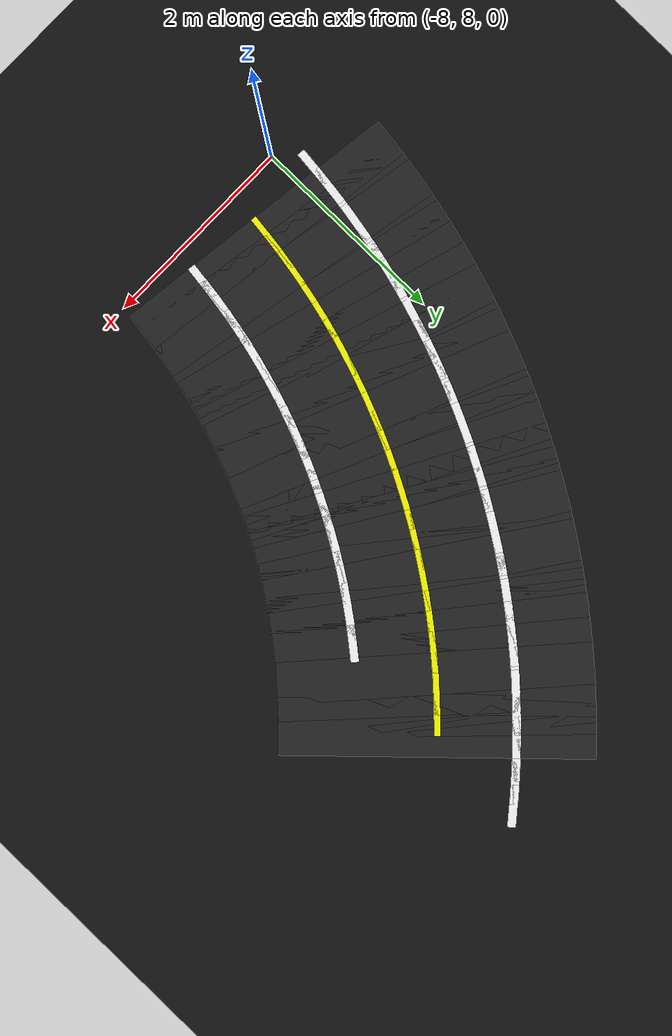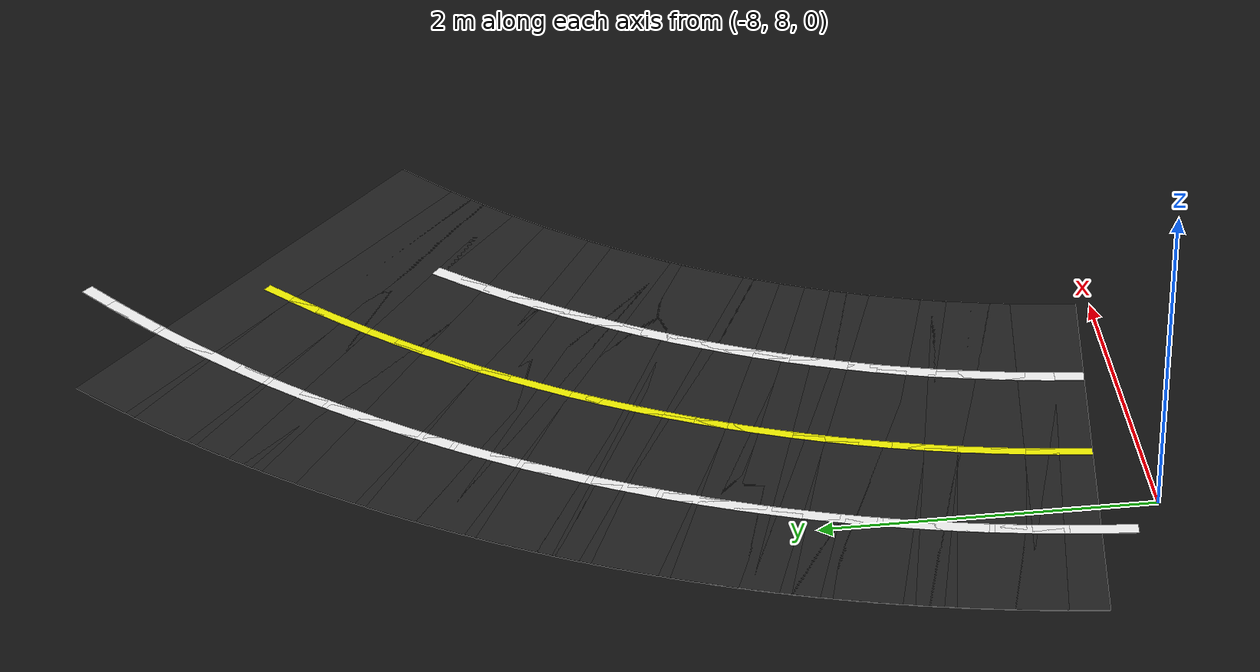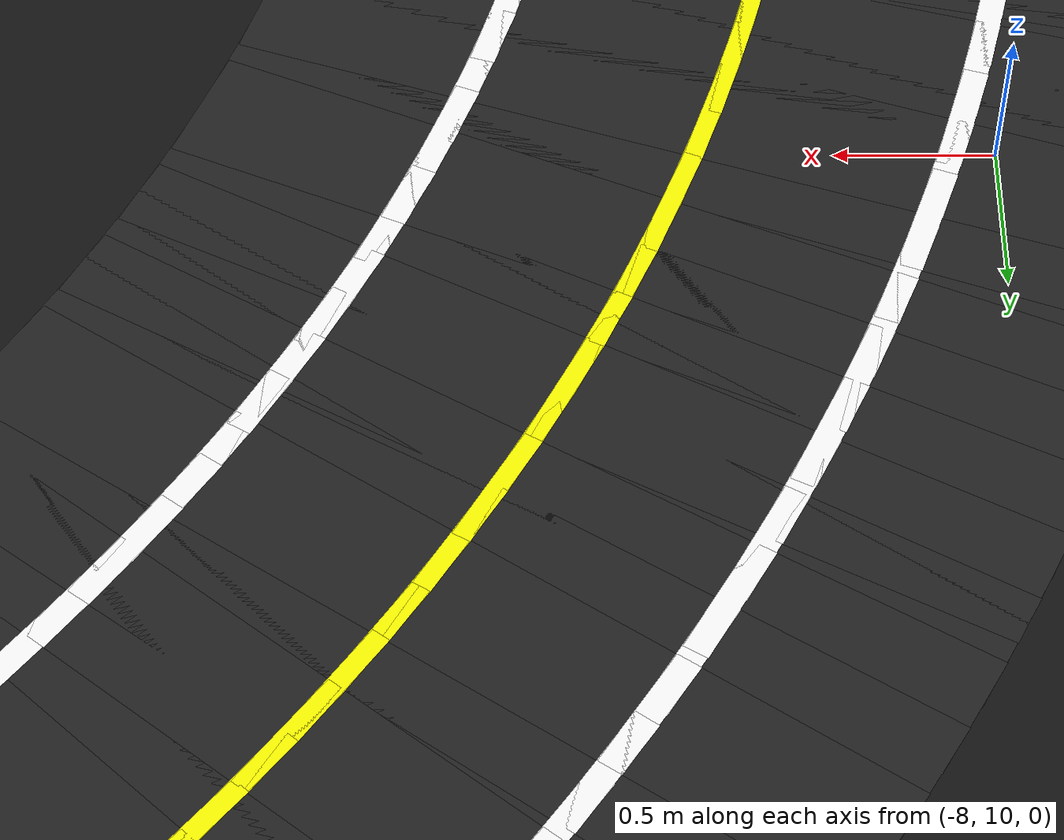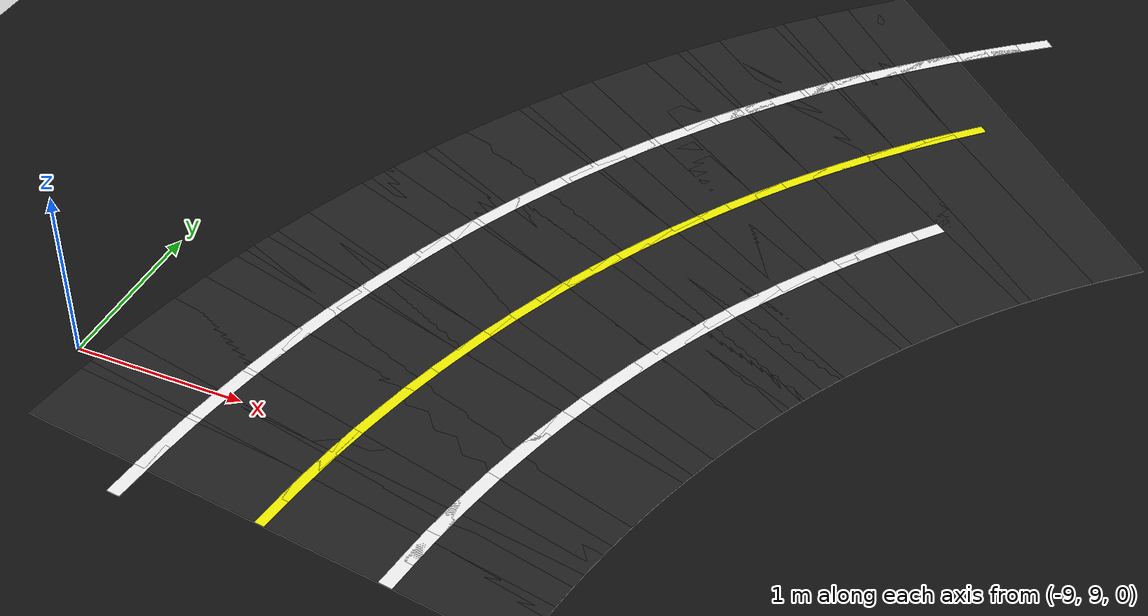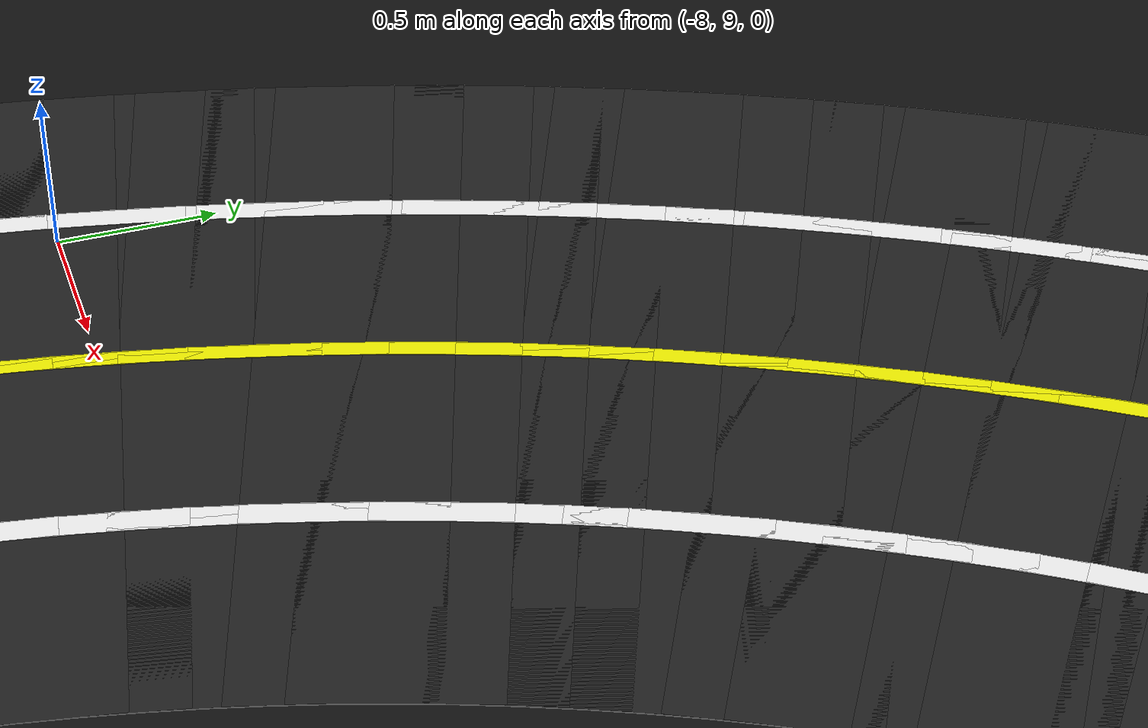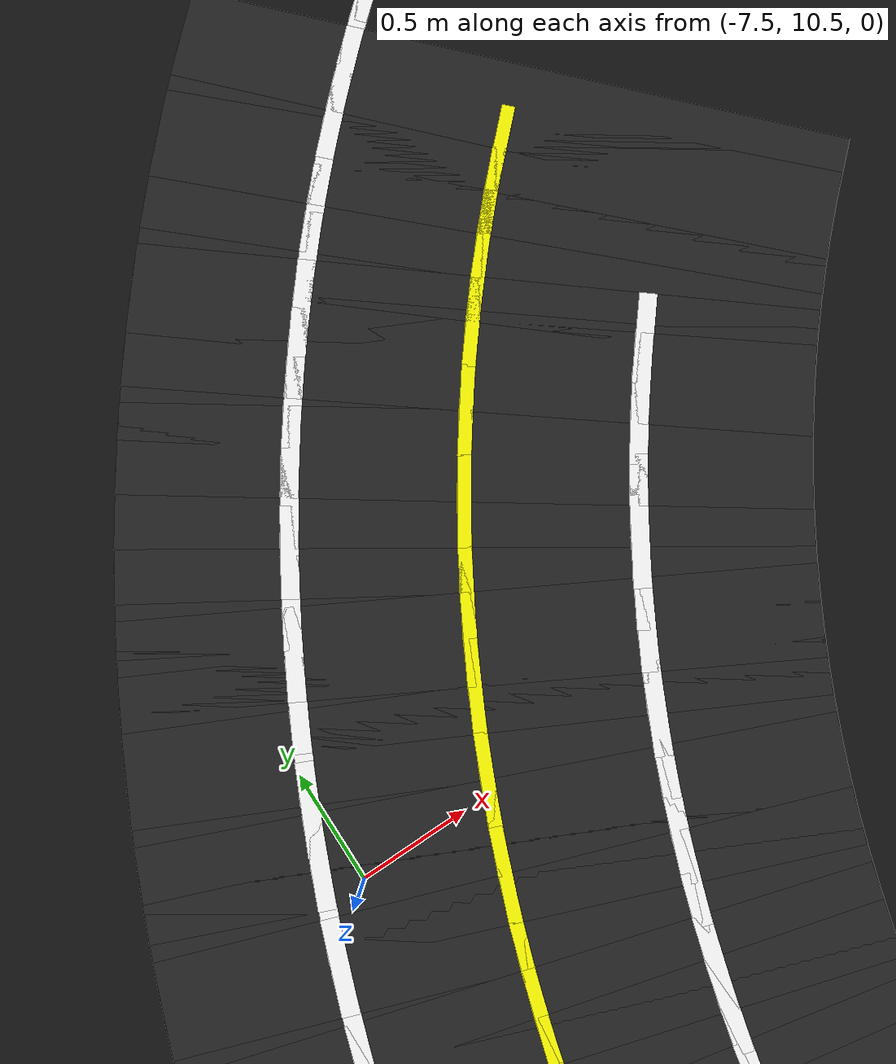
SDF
<sdf version="1.6">
 <world name="figure8_world">
  <model name="ground_plane">
   <static>true</static>
   <link name="link">
    <collision name="collision">
     <geometry><plane><normal>0 0 1</normal><size>120 120</size></plane></geometry>
    </collision>
    <visual name="visual">
     <geometry><plane><normal>0 0 1</normal><size>120 120</size></plane></geometry>
     <material><ambient>0.08 0.08 0.08 1</ambient><diffuse>0.08 0.08 0.08 1</diffuse></material>
    </visual>
   </link>
  </model>
  <model name="seg_00345">
   <static>true</static>
   <pose>-5.1919 13.9115 0.0030 0 0 3.8223</pose>
   <link name="link">
    <collision name="collision"><geometry><box><size>0.4000 0.0800 0.002</size></box></geometry></collision>
    <visual name="visual">
     <geometry><box><size>0.4000 0.0800 0.002</size></box></geometry>
     <material><ambient>1 1 1 1</ambient><diffuse>1 1 1 1</diffuse></material>
    </visual>
   </link>
  </model>
  <model name="seg_00349">
   <static>true</static>
   <pose>-5.3579 13.7733 0.0030 0 0 3.8485</pose>
   <link name="link">
    <collision name="collision"><geometry><box><size>0.4000 0.0800 0.002</size></box></geometry></collision>
    <visual name="visual">
     <geometry><box><size>0.4000 0.0800 0.002</size></box></geometry>
     <material><ambient>1 1 1 1</ambient><diffuse>1 1 1 1</diffuse></material>
    </visual>
   </link>
  </model>
  <model name="seg_00353">
   <static>true</static>
   <pose>-5.5203 13.6309 0.0030 0 0 3.8746</pose>
   <link name="link">
    <collision name="collision"><geometry><box><size>0.4000 0.0800 0.002</size></box></geometry></collision>
    <visual name="visual">
     <geometry><box><size>0.4000 0.0800 0.002</size></box></geometry>
     <material><ambient>1 1 1 1</ambient><diffuse>1 1 1 1</diffuse></material>
    </visual>
   </link>
  </model>
  <model name="seg_00356">
   <static>true</static>
   <pose>-5.1627 12.9403 0.0010 0 0 3.9008</pose>
   <link name="link">
    <collision name="collision"><geometry><box><size>0.4000 3.0000 0.002</size></box></geometry></collision>
    <visual name="visual">
     <geometry><box><size>0.4000 3.0000 0.002</size></box></geometry>
     <material><ambient>0.14 0.14 0.14 1</ambient><diffuse>0.14 0.14 0.14 1</diffuse></material>
    </visual>
   </link>
  </model>
  <model name="seg_00357">
   <static>true</static>
   <pose>-5.6789 13.4843 0.0030 0 0 3.9008</pose>
   <link name="link">
    <collision name="collision"><geometry><box><size>0.4000 0.0800 0.002</size></box></geometry></collision>
    <visual name="visual">
     <geometry><box><size>0.4000 0.0800 0.002</size></box></geometry>
     <material><ambient>1 1 1 1</ambient><diffuse>1 1 1 1</diffuse></material>
    </visual>
   </link>
  </model>
  <model name="seg_00360">
   <static>true</static>
   <pose>-5.3033 12.8033 0.0010 0 0 3.9270</pose>
   <link name="link">
    <collision name="collision"><geometry><box><size>0.4000 3.0000 0.002</size></box></geometry></collision>
    <visual name="visual">
     <geometry><box><size>0.4000 3.0000 0.002</size></box></geometry>
     <material><ambient>0.14 0.14 0.14 1</ambient><diffuse>0.14 0.14 0.14 1</diffuse></material>
    </visual>
   </link>
  </model>
  <model name="seg_00361">
   <static>true</static>
   <pose>-5.8336 13.3336 0.0030 0 0 3.9270</pose>
   <link name="link">
    <collision name="collision"><geometry><box><size>0.4000 0.0800 0.002</size></box></geometry></collision>
    <visual name="visual">
     <geometry><box><size>0.4000 0.0800 0.002</size></box></geometry>
     <material><ambient>1 1 1 1</ambient><diffuse>1 1 1 1</diffuse></material>
    </visual>
   </link>
  </model>
  <model name="seg_00363">
   <static>true</static>
   <pose>-5.3033 12.8033 0.0030 0 0 3.9270</pose>
   <link name="link">
    <collision name="collision"><geometry><box><size>0.4000 0.0600 0.002</size></box></geometry></collision>
    <visual name="visual">
     <geometry><box><size>0.4000 0.0600 0.002</size></box></geometry>
     <material><ambient>1 1 0 1</ambient><diffuse>1 1 0 1</diffuse></material>
    </visual>
   </link>
  </model>
  <model name="seg_00364">
   <static>true</static>
   <pose>-5.4403 12.6627 0.0010 0 0 3.9532</pose>
   <link name="link">
    <collision name="collision"><geometry><box><size>0.4000 3.0000 0.002</size></box></geometry></collision>
    <visual name="visual">
     <geometry><box><size>0.4000 3.0000 0.002</size></box></geometry>
     <material><ambient>0.14 0.14 0.14 1</ambient><diffuse>0.14 0.14 0.14 1</diffuse></material>
    </visual>
   </link>
  </model>
  <model name="seg_00365">
   <static>true</static>
   <pose>-5.9843 13.1789 0.0030 0 0 3.9532</pose>
   <link name="link">
    <collision name="collision"><geometry><box><size>0.4000 0.0800 0.002</size></box></geometry></collision>
    <visual name="visual">
     <geometry><box><size>0.4000 0.0800 0.002</size></box></geometry>
     <material><ambient>1 1 1 1</ambient><diffuse>1 1 1 1</diffuse></material>
    </visual>
   </link>
  </model>
  <model name="seg_00367">
   <static>true</static>
   <pose>-5.4403 12.6627 0.0030 0 0 3.9532</pose>
   <link name="link">
    <collision name="collision"><geometry><box><size>0.4000 0.0600 0.002</size></box></geometry></collision>
    <visual name="visual">
     <geometry><box><size>0.4000 0.0600 0.002</size></box></geometry>
     <material><ambient>1 1 0 1</ambient><diffuse>1 1 0 1</diffuse></material>
    </visual>
   </link>
  </model>
  <model name="seg_00368">
   <static>true</static>
   <pose>-5.5736 12.5185 0.0010 0 0 3.9794</pose>
   <link name="link">
    <collision name="collision"><geometry><box><size>0.4000 3.0000 0.002</size></box></geometry></collision>
    <visual name="visual">
     <geometry><box><size>0.4000 3.0000 0.002</size></box></geometry>
     <material><ambient>0.14 0.14 0.14 1</ambient><diffuse>0.14 0.14 0.14 1</diffuse></material>
    </visual>
   </link>
  </model>
  <model name="seg_00369">
   <static>true</static>
   <pose>-6.1309 13.0203 0.0030 0 0 3.9794</pose>
   <link name="link">
    <collision name="collision"><geometry><box><size>0.4000 0.0800 0.002</size></box></geometry></collision>
    <visual name="visual">
     <geometry><box><size>0.4000 0.0800 0.002</size></box></geometry>
     <material><ambient>1 1 1 1</ambient><diffuse>1 1 1 1</diffuse></material>
    </visual>
   </link>
  </model>
  <model name="seg_00371">
   <static>true</static>
   <pose>-5.5736 12.5185 0.0030 0 0 3.9794</pose>
   <link name="link">
    <collision name="collision"><geometry><box><size>0.4000 0.0600 0.002</size></box></geometry></collision>
    <visual name="visual">
     <geometry><box><size>0.4000 0.0600 0.002</size></box></geometry>
     <material><ambient>1 1 0 1</ambient><diffuse>1 1 0 1</diffuse></material>
    </visual>
   </link>
  </model>
  <model name="seg_00372">
   <static>true</static>
   <pose>-5.7030 12.3709 0.0010 0 0 4.0055</pose>
   <link name="link">
    <collision name="collision"><geometry><box><size>0.4000 3.0000 0.002</size></box></geometry></collision>
    <visual name="visual">
     <geometry><box><size>0.4000 3.0000 0.002</size></box></geometry>
     <material><ambient>0.14 0.14 0.14 1</ambient><diffuse>0.14 0.14 0.14 1</diffuse></material>
    </visual>
   </link>
  </model>
  <model name="seg_00373">
   <static>true</static>
   <pose>-6.2733 12.8579 0.0030 0 0 4.0055</pose>
   <link name="link">
    <collision name="collision"><geometry><box><size>0.4000 0.0800 0.002</size></box></geometry></collision>
    <visual name="visual">
     <geometry><box><size>0.4000 0.0800 0.002</size></box></geometry>
     <material><ambient>1 1 1 1</ambient><diffuse>1 1 1 1</diffuse></material>
    </visual>
   </link>
  </model>
  <model name="seg_00375">
   <static>true</static>
   <pose>-5.7030 12.3709 0.0030 0 0 4.0055</pose>
   <link name="link">
    <collision name="collision"><geometry><box><size>0.4000 0.0600 0.002</size></box></geometry></collision>
    <visual name="visual">
     <geometry><box><size>0.4000 0.0600 0.002</size></box></geometry>
     <material><ambient>1 1 0 1</ambient><diffuse>1 1 0 1</diffuse></material>
    </visual>
   </link>
  </model>
  <model name="seg_00376">
   <static>true</static>
   <pose>-5.8286 12.2199 0.0010 0 0 4.0317</pose>
   <link name="link">
    <collision name="collision"><geometry><box><size>0.4000 3.0000 0.002</size></box></geometry></collision>
    <visual name="visual">
     <geometry><box><size>0.4000 3.0000 0.002</size></box></geometry>
     <material><ambient>0.14 0.14 0.14 1</ambient><diffuse>0.14 0.14 0.14 1</diffuse></material>
    </visual>
   </link>
  </model>
  <model name="seg_00377">
   <static>true</static>
   <pose>-6.4115 12.6919 0.0030 0 0 4.0317</pose>
   <link name="link">
    <collision name="collision"><geometry><box><size>0.4000 0.0800 0.002</size></box></geometry></collision>
    <visual name="visual">
     <geometry><box><size>0.4000 0.0800 0.002</size></box></geometry>
     <material><ambient>1 1 1 1</ambient><diffuse>1 1 1 1</diffuse></material>
    </visual>
   </link>
  </model>
  <model name="seg_00378">
   <static>true</static>
   <pose>-5.2457 11.7479 0.0030 0 0 4.0317</pose>
   <link name="link">
    <collision name="collision"><geometry><box><size>0.4000 0.0800 0.002</size></box></geometry></collision>
    <visual name="visual">
     <geometry><box><size>0.4000 0.0800 0.002</size></box></geometry>
     <material><ambient>1 1 1 1</ambient><diffuse>1 1 1 1</diffuse></material>
    </visual>
   </link>
  </model>
  <model name="seg_00379">
   <static>true</static>
   <pose>-5.8286 12.2199 0.0030 0 0 4.0317</pose>
   <link name="link">
    <collision name="collision"><geometry><box><size>0.4000 0.0600 0.002</size></box></geometry></collision>
    <visual name="visual">
     <geometry><box><size>0.4000 0.0600 0.002</size></box></geometry>
     <material><ambient>1 1 0 1</ambient><diffuse>1 1 0 1</diffuse></material>
    </visual>
   </link>
  </model>
  <model name="seg_00380">
   <static>true</static>
   <pose>-5.9502 12.0657 0.0010 0 0 4.0579</pose>
   <link name="link">
    <collision name="collision"><geometry><box><size>0.4000 3.0000 0.002</size></box></geometry></collision>
    <visual name="visual">
     <geometry><box><size>0.4000 3.0000 0.002</size></box></geometry>
     <material><ambient>0.14 0.14 0.14 1</ambient><diffuse>0.14 0.14 0.14 1</diffuse></material>
    </visual>
   </link>
  </model>
  <model name="seg_00381">
   <static>true</static>
   <pose>-6.5452 12.5223 0.0030 0 0 4.0579</pose>
   <link name="link">
    <collision name="collision"><geometry><box><size>0.4000 0.0800 0.002</size></box></geometry></collision>
    <visual name="visual">
     <geometry><box><size>0.4000 0.0800 0.002</size></box></geometry>
     <material><ambient>1 1 1 1</ambient><diffuse>1 1 1 1</diffuse></material>
    </visual>
   </link>
  </model>
  <model name="seg_00382">
   <static>true</static>
   <pose>-5.3551 11.6091 0.0030 0 0 4.0579</pose>
   <link name="link">
    <collision name="collision"><geometry><box><size>0.4000 0.0800 0.002</size></box></geometry></collision>
    <visual name="visual">
     <geometry><box><size>0.4000 0.0800 0.002</size></box></geometry>
     <material><ambient>1 1 1 1</ambient><diffuse>1 1 1 1</diffuse></material>
    </visual>
   </link>
  </model>
  <model name="seg_00383">
   <static>true</static>
   <pose>-5.9502 12.0657 0.0030 0 0 4.0579</pose>
   <link name="link">
    <collision name="collision"><geometry><box><size>0.4000 0.0600 0.002</size></box></geometry></collision>
    <visual name="visual">
     <geometry><box><size>0.4000 0.0600 0.002</size></box></geometry>
     <material><ambient>1 1 0 1</ambient><diffuse>1 1 0 1</diffuse></material>
    </visual>
   </link>
  </model>
  <model name="seg_00384">
   <static>true</static>
   <pose>-6.0676 11.9084 0.0010 0 0 4.0841</pose>
   <link name="link">
    <collision name="collision"><geometry><box><size>0.4000 3.0000 0.002</size></box></geometry></collision>
    <visual name="visual">
     <geometry><box><size>0.4000 3.0000 0.002</size></box></geometry>
     <material><ambient>0.14 0.14 0.14 1</ambient><diffuse>0.14 0.14 0.14 1</diffuse></material>
    </visual>
   </link>
  </model>
  <model name="seg_00385">
   <static>true</static>
   <pose>-6.6744 12.3492 0.0030 0 0 4.0841</pose>
   <link name="link">
    <collision name="collision"><geometry><box><size>0.4000 0.0800 0.002</size></box></geometry></collision>
    <visual name="visual">
     <geometry><box><size>0.4000 0.0800 0.002</size></box></geometry>
     <material><ambient>1 1 1 1</ambient><diffuse>1 1 1 1</diffuse></material>
    </visual>
   </link>
  </model>
  <model name="seg_00386">
   <static>true</static>
   <pose>-5.4609 11.4676 0.0030 0 0 4.0841</pose>
   <link name="link">
    <collision name="collision"><geometry><box><size>0.4000 0.0800 0.002</size></box></geometry></collision>
    <visual name="visual">
     <geometry><box><size>0.4000 0.0800 0.002</size></box></geometry>
     <material><ambient>1 1 1 1</ambient><diffuse>1 1 1 1</diffuse></material>
    </visual>
   </link>
  </model>
  <model name="seg_00387">
   <static>true</static>
   <pose>-6.0676 11.9084 0.0030 0 0 4.0841</pose>
   <link name="link">
    <collision name="collision"><geometry><box><size>0.4000 0.0600 0.002</size></box></geometry></collision>
    <visual name="visual">
     <geometry><box><size>0.4000 0.0600 0.002</size></box></geometry>
     <material><ambient>1 1 0 1</ambient><diffuse>1 1 0 1</diffuse></material>
    </visual>
   </link>
  </model>
  <model name="seg_00388">
   <static>true</static>
   <pose>-6.1809 11.7480 0.0010 0 0 4.1103</pose>
   <link name="link">
    <collision name="collision"><geometry><box><size>0.4000 3.0000 0.002</size></box></geometry></collision>
    <visual name="visual">
     <geometry><box><size>0.4000 3.0000 0.002</size></box></geometry>
     <material><ambient>0.14 0.14 0.14 1</ambient><diffuse>0.14 0.14 0.14 1</diffuse></material>
    </visual>
   </link>
  </model>
  <model name="seg_00389">
   <static>true</static>
   <pose>-6.7990 12.1729 0.0030 0 0 4.1103</pose>
   <link name="link">
    <collision name="collision"><geometry><box><size>0.4000 0.0800 0.002</size></box></geometry></collision>
    <visual name="visual">
     <geometry><box><size>0.4000 0.0800 0.002</size></box></geometry>
     <material><ambient>1 1 1 1</ambient><diffuse>1 1 1 1</diffuse></material>
    </visual>
   </link>
  </model>
  <model name="seg_00390">
   <static>true</static>
   <pose>-5.5629 11.3232 0.0030 0 0 4.1103</pose>
   <link name="link">
    <collision name="collision"><geometry><box><size>0.4000 0.0800 0.002</size></box></geometry></collision>
    <visual name="visual">
     <geometry><box><size>0.4000 0.0800 0.002</size></box></geometry>
     <material><ambient>1 1 1 1</ambient><diffuse>1 1 1 1</diffuse></material>
    </visual>
   </link>
  </model>
  <model name="seg_00391">
   <static>true</static>
   <pose>-6.1809 11.7480 0.0030 0 0 4.1103</pose>
   <link name="link">
    <collision name="collision"><geometry><box><size>0.4000 0.0600 0.002</size></box></geometry></collision>
    <visual name="visual">
     <geometry><box><size>0.4000 0.0600 0.002</size></box></geometry>
     <material><ambient>1 1 0 1</ambient><diffuse>1 1 0 1</diffuse></material>
    </visual>
   </link>
  </model>
  <model name="seg_00392">
   <static>true</static>
   <pose>-6.2900 11.5848 0.0010 0 0 4.1364</pose>
   <link name="link">
    <collision name="collision"><geometry><box><size>0.4000 3.0000 0.002</size></box></geometry></collision>
    <visual name="visual">
     <geometry><box><size>0.4000 3.0000 0.002</size></box></geometry>
     <material><ambient>0.14 0.14 0.14 1</ambient><diffuse>0.14 0.14 0.14 1</diffuse></material>
    </visual>
   </link>
  </model>
  <model name="seg_00393">
   <static>true</static>
   <pose>-6.9190 11.9933 0.0030 0 0 4.1364</pose>
   <link name="link">
    <collision name="collision"><geometry><box><size>0.4000 0.0800 0.002</size></box></geometry></collision>
    <visual name="visual">
     <geometry><box><size>0.4000 0.0800 0.002</size></box></geometry>
     <material><ambient>1 1 1 1</ambient><diffuse>1 1 1 1</diffuse></material>
    </visual>
   </link>
  </model>
  <model name="seg_00394">
   <static>true</static>
   <pose>-5.6610 11.1763 0.0030 0 0 4.1364</pose>
   <link name="link">
    <collision name="collision"><geometry><box><size>0.4000 0.0800 0.002</size></box></geometry></collision>
    <visual name="visual">
     <geometry><box><size>0.4000 0.0800 0.002</size></box></geometry>
     <material><ambient>1 1 1 1</ambient><diffuse>1 1 1 1</diffuse></material>
    </visual>
   </link>
  </model>
  <model name="seg_00395">
   <static>true</static>
   <pose>-6.2900 11.5848 0.0030 0 0 4.1364</pose>
   <link name="link">
    <collision name="collision"><geometry><box><size>0.4000 0.0600 0.002</size></box></geometry></collision>
    <visual name="visual">
     <geometry><box><size>0.4000 0.0600 0.002</size></box></geometry>
     <material><ambient>1 1 0 1</ambient><diffuse>1 1 0 1</diffuse></material>
    </visual>
   </link>
  </model>
  <model name="seg_00396">
   <static>true</static>
   <pose>-6.3948 11.4187 0.0010 0 0 4.1626</pose>
   <link name="link">
    <collision name="collision"><geometry><box><size>0.4000 3.0000 0.002</size></box></geometry></collision>
    <visual name="visual">
     <geometry><box><size>0.4000 3.0000 0.002</size></box></geometry>
     <material><ambient>0.14 0.14 0.14 1</ambient><diffuse>0.14 0.14 0.14 1</diffuse></material>
    </visual>
   </link>
  </model>
  <model name="seg_00397">
   <static>true</static>
   <pose>-7.0343 11.8106 0.0030 0 0 4.1626</pose>
   <link name="link">
    <collision name="collision"><geometry><box><size>0.4000 0.0800 0.002</size></box></geometry></collision>
    <visual name="visual">
     <geometry><box><size>0.4000 0.0800 0.002</size></box></geometry>
     <material><ambient>1 1 1 1</ambient><diffuse>1 1 1 1</diffuse></material>
    </visual>
   </link>
  </model>
  <model name="seg_00398">
   <static>true</static>
   <pose>-5.7553 11.0269 0.0030 0 0 4.1626</pose>
   <link name="link">
    <collision name="collision"><geometry><box><size>0.4000 0.0800 0.002</size></box></geometry></collision>
    <visual name="visual">
     <geometry><box><size>0.4000 0.0800 0.002</size></box></geometry>
     <material><ambient>1 1 1 1</ambient><diffuse>1 1 1 1</diffuse></material>
    </visual>
   </link>
  </model>
  <model name="seg_00399">
   <static>true</static>
   <pose>-6.3948 11.4187 0.0030 0 0 4.1626</pose>
   <link name="link">
    <collision name="collision"><geometry><box><size>0.4000 0.0600 0.002</size></box></geometry></collision>
    <visual name="visual">
     <geometry><box><size>0.4000 0.0600 0.002</size></box></geometry>
     <material><ambient>1 1 0 1</ambient><diffuse>1 1 0 1</diffuse></material>
    </visual>
   </link>
  </model>
  <model name="seg_00400">
   <static>true</static>
   <pose>-6.4952 11.2500 0.0010 0 0 4.1888</pose>
   <link name="link">
    <collision name="collision"><geometry><box><size>0.4000 3.0000 0.002</size></box></geometry></collision>
    <visual name="visual">
     <geometry><box><size>0.4000 3.0000 0.002</size></box></geometry>
     <material><ambient>0.14 0.14 0.14 1</ambient><diffuse>0.14 0.14 0.14 1</diffuse></material>
    </visual>
   </link>
  </model>
  <model name="seg_00401">
   <static>true</static>
   <pose>-7.1447 11.6250 0.0030 0 0 4.1888</pose>
   <link name="link">
    <collision name="collision"><geometry><box><size>0.4000 0.0800 0.002</size></box></geometry></collision>
    <visual name="visual">
     <geometry><box><size>0.4000 0.0800 0.002</size></box></geometry>
     <material><ambient>1 1 1 1</ambient><diffuse>1 1 1 1</diffuse></material>
    </visual>
   </link>
  </model>
  <model name="seg_00402">
   <static>true</static>
   <pose>-5.8457 10.8750 0.0030 0 0 4.1888</pose>
   <link name="link">
    <collision name="collision"><geometry><box><size>0.4000 0.0800 0.002</size></box></geometry></collision>
    <visual name="visual">
     <geometry><box><size>0.4000 0.0800 0.002</size></box></geometry>
     <material><ambient>1 1 1 1</ambient><diffuse>1 1 1 1</diffuse></material>
    </visual>
   </link>
  </model>
  <model name="seg_00403">
   <static>true</static>
   <pose>-6.4952 11.2500 0.0030 0 0 4.1888</pose>
   <link name="link">
    <collision name="collision"><geometry><box><size>0.4000 0.0600 0.002</size></box></geometry></collision>
    <visual name="visual">
     <geometry><box><size>0.4000 0.0600 0.002</size></box></geometry>
     <material><ambient>1 1 0 1</ambient><diffuse>1 1 0 1</diffuse></material>
    </visual>
   </link>
  </model>
  <model name="seg_00404">
   <static>true</static>
   <pose>-6.5911 11.0787 0.0010 0 0 4.2150</pose>
   <link name="link">
    <collision name="collision"><geometry><box><size>0.4000 3.0000 0.002</size></box></geometry></collision>
    <visual name="visual">
     <geometry><box><size>0.4000 3.0000 0.002</size></box></geometry>
     <material><ambient>0.14 0.14 0.14 1</ambient><diffuse>0.14 0.14 0.14 1</diffuse></material>
    </visual>
   </link>
  </model>
  <model name="seg_00405">
   <static>true</static>
   <pose>-7.2502 11.4366 0.0030 0 0 4.2150</pose>
   <link name="link">
    <collision name="collision"><geometry><box><size>0.4000 0.0800 0.002</size></box></geometry></collision>
    <visual name="visual">
     <geometry><box><size>0.4000 0.0800 0.002</size></box></geometry>
     <material><ambient>1 1 1 1</ambient><diffuse>1 1 1 1</diffuse></material>
    </visual>
   </link>
  </model>
  <model name="seg_00406">
   <static>true</static>
   <pose>-5.9320 10.7208 0.0030 0 0 4.2150</pose>
   <link name="link">
    <collision name="collision"><geometry><box><size>0.4000 0.0800 0.002</size></box></geometry></collision>
    <visual name="visual">
     <geometry><box><size>0.4000 0.0800 0.002</size></box></geometry>
     <material><ambient>1 1 1 1</ambient><diffuse>1 1 1 1</diffuse></material>
    </visual>
   </link>
  </model>
  <model name="seg_00407">
   <static>true</static>
   <pose>-6.5911 11.0787 0.0030 0 0 4.2150</pose>
   <link name="link">
    <collision name="collision"><geometry><box><size>0.4000 0.0600 0.002</size></box></geometry></collision>
    <visual name="visual">
     <geometry><box><size>0.4000 0.0600 0.002</size></box></geometry>
     <material><ambient>1 1 0 1</ambient><diffuse>1 1 0 1</diffuse></material>
    </visual>
   </link>
  </model>
  <model name="seg_00408">
   <static>true</static>
   <pose>-6.6825 10.9049 0.0010 0 0 4.2412</pose>
   <link name="link">
    <collision name="collision"><geometry><box><size>0.4000 3.0000 0.002</size></box></geometry></collision>
    <visual name="visual">
     <geometry><box><size>0.4000 3.0000 0.002</size></box></geometry>
     <material><ambient>0.14 0.14 0.14 1</ambient><diffuse>0.14 0.14 0.14 1</diffuse></material>
    </visual>
   </link>
  </model>
  <model name="seg_00409">
   <static>true</static>
   <pose>-7.3508 11.2454 0.0030 0 0 4.2412</pose>
   <link name="link">
    <collision name="collision"><geometry><box><size>0.4000 0.0800 0.002</size></box></geometry></collision>
    <visual name="visual">
     <geometry><box><size>0.4000 0.0800 0.002</size></box></geometry>
     <material><ambient>1 1 1 1</ambient><diffuse>1 1 1 1</diffuse></material>
    </visual>
   </link>
  </model>
  <model name="seg_00410">
   <static>true</static>
   <pose>-6.0143 10.5644 0.0030 0 0 4.2412</pose>
   <link name="link">
    <collision name="collision"><geometry><box><size>0.4000 0.0800 0.002</size></box></geometry></collision>
    <visual name="visual">
     <geometry><box><size>0.4000 0.0800 0.002</size></box></geometry>
     <material><ambient>1 1 1 1</ambient><diffuse>1 1 1 1</diffuse></material>
    </visual>
   </link>
  </model>
  <model name="seg_00411">
   <static>true</static>
   <pose>-6.6825 10.9049 0.0030 0 0 4.2412</pose>
   <link name="link">
    <collision name="collision"><geometry><box><size>0.4000 0.0600 0.002</size></box></geometry></collision>
    <visual name="visual">
     <geometry><box><size>0.4000 0.0600 0.002</size></box></geometry>
     <material><ambient>1 1 0 1</ambient><diffuse>1 1 0 1</diffuse></material>
    </visual>
   </link>
  </model>
  <model name="seg_00412">
   <static>true</static>
   <pose>-6.7694 10.7288 0.0010 0 0 4.2673</pose>
   <link name="link">
    <collision name="collision"><geometry><box><size>0.4000 3.0000 0.002</size></box></geometry></collision>
    <visual name="visual">
     <geometry><box><size>0.4000 3.0000 0.002</size></box></geometry>
     <material><ambient>0.14 0.14 0.14 1</ambient><diffuse>0.14 0.14 0.14 1</diffuse></material>
    </visual>
   </link>
  </model>
  <model name="seg_00413">
   <static>true</static>
   <pose>-7.4463 11.0517 0.0030 0 0 4.2673</pose>
   <link name="link">
    <collision name="collision"><geometry><box><size>0.4000 0.0800 0.002</size></box></geometry></collision>
    <visual name="visual">
     <geometry><box><size>0.4000 0.0800 0.002</size></box></geometry>
     <material><ambient>1 1 1 1</ambient><diffuse>1 1 1 1</diffuse></material>
    </visual>
   </link>
  </model>
  <model name="seg_00414">
   <static>true</static>
   <pose>-6.0925 10.4059 0.0030 0 0 4.2673</pose>
   <link name="link">
    <collision name="collision"><geometry><box><size>0.4000 0.0800 0.002</size></box></geometry></collision>
    <visual name="visual">
     <geometry><box><size>0.4000 0.0800 0.002</size></box></geometry>
     <material><ambient>1 1 1 1</ambient><diffuse>1 1 1 1</diffuse></material>
    </visual>
   </link>
  </model>
  <model name="seg_00415">
   <static>true</static>
   <pose>-6.7694 10.7288 0.0030 0 0 4.2673</pose>
   <link name="link">
    <collision name="collision"><geometry><box><size>0.4000 0.0600 0.002</size></box></geometry></collision>
    <visual name="visual">
     <geometry><box><size>0.4000 0.0600 0.002</size></box></geometry>
     <material><ambient>1 1 0 1</ambient><diffuse>1 1 0 1</diffuse></material>
    </visual>
   </link>
  </model>
  <model name="seg_00416">
   <static>true</static>
   <pose>-6.8516 10.5505 0.0010 0 0 4.2935</pose>
   <link name="link">
    <collision name="collision"><geometry><box><size>0.4000 3.0000 0.002</size></box></geometry></collision>
    <visual name="visual">
     <geometry><box><size>0.4000 3.0000 0.002</size></box></geometry>
     <material><ambient>0.14 0.14 0.14 1</ambient><diffuse>0.14 0.14 0.14 1</diffuse></material>
    </visual>
   </link>
  </model>
  <model name="seg_00417">
   <static>true</static>
   <pose>-7.5368 10.8556 0.0030 0 0 4.2935</pose>
   <link name="link">
    <collision name="collision"><geometry><box><size>0.4000 0.0800 0.002</size></box></geometry></collision>
    <visual name="visual">
     <geometry><box><size>0.4000 0.0800 0.002</size></box></geometry>
     <material><ambient>1 1 1 1</ambient><diffuse>1 1 1 1</diffuse></material>
    </visual>
   </link>
  </model>
  <model name="seg_00418">
   <static>true</static>
   <pose>-6.1664 10.2455 0.0030 0 0 4.2935</pose>
   <link name="link">
    <collision name="collision"><geometry><box><size>0.4000 0.0800 0.002</size></box></geometry></collision>
    <visual name="visual">
     <geometry><box><size>0.4000 0.0800 0.002</size></box></geometry>
     <material><ambient>1 1 1 1</ambient><diffuse>1 1 1 1</diffuse></material>
    </visual>
   </link>
  </model>
  <model name="seg_00419">
   <static>true</static>
   <pose>-6.8516 10.5505 0.0030 0 0 4.2935</pose>
   <link name="link">
    <collision name="collision"><geometry><box><size>0.4000 0.0600 0.002</size></box></geometry></collision>
    <visual name="visual">
     <geometry><box><size>0.4000 0.0600 0.002</size></box></geometry>
     <material><ambient>1 1 0 1</ambient><diffuse>1 1 0 1</diffuse></material>
    </visual>
   </link>
  </model>
  <model name="seg_00420">
   <static>true</static>
   <pose>-6.9291 10.3701 0.0010 0 0 4.3197</pose>
   <link name="link">
    <collision name="collision"><geometry><box><size>0.4000 3.0000 0.002</size></box></geometry></collision>
    <visual name="visual">
     <geometry><box><size>0.4000 3.0000 0.002</size></box></geometry>
     <material><ambient>0.14 0.14 0.14 1</ambient><diffuse>0.14 0.14 0.14 1</diffuse></material>
    </visual>
   </link>
  </model>
  <model name="seg_00421">
   <static>true</static>
   <pose>-7.6220 10.6571 0.0030 0 0 4.3197</pose>
   <link name="link">
    <collision name="collision"><geometry><box><size>0.4000 0.0800 0.002</size></box></geometry></collision>
    <visual name="visual">
     <geometry><box><size>0.4000 0.0800 0.002</size></box></geometry>
     <material><ambient>1 1 1 1</ambient><diffuse>1 1 1 1</diffuse></material>
    </visual>
   </link>
  </model>
  <model name="seg_00422">
   <static>true</static>
   <pose>-6.2362 10.0831 0.0030 0 0 4.3197</pose>
   <link name="link">
    <collision name="collision"><geometry><box><size>0.4000 0.0800 0.002</size></box></geometry></collision>
    <visual name="visual">
     <geometry><box><size>0.4000 0.0800 0.002</size></box></geometry>
     <material><ambient>1 1 1 1</ambient><diffuse>1 1 1 1</diffuse></material>
    </visual>
   </link>
  </model>
  <model name="seg_00423">
   <static>true</static>
   <pose>-6.9291 10.3701 0.0030 0 0 4.3197</pose>
   <link name="link">
    <collision name="collision"><geometry><box><size>0.4000 0.0600 0.002</size></box></geometry></collision>
    <visual name="visual">
     <geometry><box><size>0.4000 0.0600 0.002</size></box></geometry>
     <material><ambient>1 1 0 1</ambient><diffuse>1 1 0 1</diffuse></material>
    </visual>
   </link>
  </model>
  <model name="seg_00424">
   <static>true</static>
   <pose>-7.0019 10.1878 0.0010 0 0 4.3459</pose>
   <link name="link">
    <collision name="collision"><geometry><box><size>0.4000 3.0000 0.002</size></box></geometry></collision>
    <visual name="visual">
     <geometry><box><size>0.4000 3.0000 0.002</size></box></geometry>
     <material><ambient>0.14 0.14 0.14 1</ambient><diffuse>0.14 0.14 0.14 1</diffuse></material>
    </visual>
   </link>
  </model>
  <model name="seg_00425">
   <static>true</static>
   <pose>-7.7020 10.4565 0.0030 0 0 4.3459</pose>
   <link name="link">
    <collision name="collision"><geometry><box><size>0.4000 0.0800 0.002</size></box></geometry></collision>
    <visual name="visual">
     <geometry><box><size>0.4000 0.0800 0.002</size></box></geometry>
     <material><ambient>1 1 1 1</ambient><diffuse>1 1 1 1</diffuse></material>
    </visual>
   </link>
  </model>
  <model name="seg_00426">
   <static>true</static>
   <pose>-6.3017 9.9190 0.0030 0 0 4.3459</pose>
   <link name="link">
    <collision name="collision"><geometry><box><size>0.4000 0.0800 0.002</size></box></geometry></collision>
    <visual name="visual">
     <geometry><box><size>0.4000 0.0800 0.002</size></box></geometry>
     <material><ambient>1 1 1 1</ambient><diffuse>1 1 1 1</diffuse></material>
    </visual>
   </link>
  </model>
  <model name="seg_00427">
   <static>true</static>
   <pose>-7.0019 10.1878 0.0030 0 0 4.3459</pose>
   <link name="link">
    <collision name="collision"><geometry><box><size>0.4000 0.0600 0.002</size></box></geometry></collision>
    <visual name="visual">
     <geometry><box><size>0.4000 0.0600 0.002</size></box></geometry>
     <material><ambient>1 1 0 1</ambient><diffuse>1 1 0 1</diffuse></material>
    </visual>
   </link>
  </model>
  <model name="seg_00428">
   <static>true</static>
   <pose>-7.0698 10.0036 0.0010 0 0 4.3720</pose>
   <link name="link">
    <collision name="collision"><geometry><box><size>0.4000 3.0000 0.002</size></box></geometry></collision>
    <visual name="visual">
     <geometry><box><size>0.4000 3.0000 0.002</size></box></geometry>
     <material><ambient>0.14 0.14 0.14 1</ambient><diffuse>0.14 0.14 0.14 1</diffuse></material>
    </visual>
   </link>
  </model>
  <model name="seg_00429">
   <static>true</static>
   <pose>-7.7768 10.2539 0.0030 0 0 4.3720</pose>
   <link name="link">
    <collision name="collision"><geometry><box><size>0.4000 0.0800 0.002</size></box></geometry></collision>
    <visual name="visual">
     <geometry><box><size>0.4000 0.0800 0.002</size></box></geometry>
     <material><ambient>1 1 1 1</ambient><diffuse>1 1 1 1</diffuse></material>
    </visual>
   </link>
  </model>
  <model name="seg_00430">
   <static>true</static>
   <pose>-6.3628 9.7532 0.0030 0 0 4.3720</pose>
   <link name="link">
    <collision name="collision"><geometry><box><size>0.4000 0.0800 0.002</size></box></geometry></collision>
    <visual name="visual">
     <geometry><box><size>0.4000 0.0800 0.002</size></box></geometry>
     <material><ambient>1 1 1 1</ambient><diffuse>1 1 1 1</diffuse></material>
    </visual>
   </link>
  </model>
  <model name="seg_00431">
   <static>true</static>
   <pose>-7.0698 10.0036 0.0030 0 0 4.3720</pose>
   <link name="link">
    <collision name="collision"><geometry><box><size>0.4000 0.0600 0.002</size></box></geometry></collision>
    <visual name="visual">
     <geometry><box><size>0.4000 0.0600 0.002</size></box></geometry>
     <material><ambient>1 1 0 1</ambient><diffuse>1 1 0 1</diffuse></material>
    </visual>
   </link>
  </model>
  <model name="seg_00432">
   <static>true</static>
   <pose>-7.1329 9.8176 0.0010 0 0 4.3982</pose>
   <link name="link">
    <collision name="collision"><geometry><box><size>0.4000 3.0000 0.002</size></box></geometry></collision>
    <visual name="visual">
     <geometry><box><size>0.4000 3.0000 0.002</size></box></geometry>
     <material><ambient>0.14 0.14 0.14 1</ambient><diffuse>0.14 0.14 0.14 1</diffuse></material>
    </visual>
   </link>
  </model>
  <model name="seg_00433">
   <static>true</static>
   <pose>-7.8462 10.0494 0.0030 0 0 4.3982</pose>
   <link name="link">
    <collision name="collision"><geometry><box><size>0.4000 0.0800 0.002</size></box></geometry></collision>
    <visual name="visual">
     <geometry><box><size>0.4000 0.0800 0.002</size></box></geometry>
     <material><ambient>1 1 1 1</ambient><diffuse>1 1 1 1</diffuse></material>
    </visual>
   </link>
  </model>
  <model name="seg_00434">
   <static>true</static>
   <pose>-6.4196 9.5859 0.0030 0 0 4.3982</pose>
   <link name="link">
    <collision name="collision"><geometry><box><size>0.4000 0.0800 0.002</size></box></geometry></collision>
    <visual name="visual">
     <geometry><box><size>0.4000 0.0800 0.002</size></box></geometry>
     <material><ambient>1 1 1 1</ambient><diffuse>1 1 1 1</diffuse></material>
    </visual>
   </link>
  </model>
  <model name="seg_00435">
   <static>true</static>
   <pose>-7.1329 9.8176 0.0030 0 0 4.3982</pose>
   <link name="link">
    <collision name="collision"><geometry><box><size>0.4000 0.0600 0.002</size></box></geometry></collision>
    <visual name="visual">
     <geometry><box><size>0.4000 0.0600 0.002</size></box></geometry>
     <material><ambient>1 1 0 1</ambient><diffuse>1 1 0 1</diffuse></material>
    </visual>
   </link>
  </model>
  <model name="seg_00436">
   <static>true</static>
   <pose>-7.1911 9.6301 0.0010 0 0 4.4244</pose>
   <link name="link">
    <collision name="collision"><geometry><box><size>0.4000 3.0000 0.002</size></box></geometry></collision>
    <visual name="visual">
     <geometry><box><size>0.4000 3.0000 0.002</size></box></geometry>
     <material><ambient>0.14 0.14 0.14 1</ambient><diffuse>0.14 0.14 0.14 1</diffuse></material>
    </visual>
   </link>
  </model>
  <model name="seg_00437">
   <static>true</static>
   <pose>-7.9103 9.8431 0.0030 0 0 4.4244</pose>
   <link name="link">
    <collision name="collision"><geometry><box><size>0.4000 0.0800 0.002</size></box></geometry></collision>
    <visual name="visual">
     <geometry><box><size>0.4000 0.0800 0.002</size></box></geometry>
     <material><ambient>1 1 1 1</ambient><diffuse>1 1 1 1</diffuse></material>
    </visual>
   </link>
  </model>
  <model name="seg_00438">
   <static>true</static>
   <pose>-6.4720 9.4171 0.0030 0 0 4.4244</pose>
   <link name="link">
    <collision name="collision"><geometry><box><size>0.4000 0.0800 0.002</size></box></geometry></collision>
    <visual name="visual">
     <geometry><box><size>0.4000 0.0800 0.002</size></box></geometry>
     <material><ambient>1 1 1 1</ambient><diffuse>1 1 1 1</diffuse></material>
    </visual>
   </link>
  </model>
  <model name="seg_00439">
   <static>true</static>
   <pose>-7.1911 9.6301 0.0030 0 0 4.4244</pose>
   <link name="link">
    <collision name="collision"><geometry><box><size>0.4000 0.0600 0.002</size></box></geometry></collision>
    <visual name="visual">
     <geometry><box><size>0.4000 0.0600 0.002</size></box></geometry>
     <material><ambient>1 1 0 1</ambient><diffuse>1 1 0 1</diffuse></material>
    </visual>
   </link>
  </model>
  <model name="seg_00440">
   <static>true</static>
   <pose>-7.2444 9.4411 0.0010 0 0 4.4506</pose>
   <link name="link">
    <collision name="collision"><geometry><box><size>0.4000 3.0000 0.002</size></box></geometry></collision>
    <visual name="visual">
     <geometry><box><size>0.4000 3.0000 0.002</size></box></geometry>
     <material><ambient>0.14 0.14 0.14 1</ambient><diffuse>0.14 0.14 0.14 1</diffuse></material>
    </visual>
   </link>
  </model>
  <model name="seg_00441">
   <static>true</static>
   <pose>-7.9689 9.6353 0.0030 0 0 4.4506</pose>
   <link name="link">
    <collision name="collision"><geometry><box><size>0.4000 0.0800 0.002</size></box></geometry></collision>
    <visual name="visual">
     <geometry><box><size>0.4000 0.0800 0.002</size></box></geometry>
     <material><ambient>1 1 1 1</ambient><diffuse>1 1 1 1</diffuse></material>
    </visual>
   </link>
  </model>
  <model name="seg_00442">
   <static>true</static>
   <pose>-6.5200 9.2470 0.0030 0 0 4.4506</pose>
   <link name="link">
    <collision name="collision"><geometry><box><size>0.4000 0.0800 0.002</size></box></geometry></collision>
    <visual name="visual">
     <geometry><box><size>0.4000 0.0800 0.002</size></box></geometry>
     <material><ambient>1 1 1 1</ambient><diffuse>1 1 1 1</diffuse></material>
    </visual>
   </link>
  </model>
  <model name="seg_00443">
   <static>true</static>
   <pose>-7.2444 9.4411 0.0030 0 0 4.4506</pose>
   <link name="link">
    <collision name="collision"><geometry><box><size>0.4000 0.0600 0.002</size></box></geometry></collision>
    <visual name="visual">
     <geometry><box><size>0.4000 0.0600 0.002</size></box></geometry>
     <material><ambient>1 1 0 1</ambient><diffuse>1 1 0 1</diffuse></material>
    </visual>
   </link>
  </model>
  <model name="seg_00444">
   <static>true</static>
   <pose>-7.2928 9.2508 0.0010 0 0 4.4768</pose>
   <link name="link">
    <collision name="collision"><geometry><box><size>0.4000 3.0000 0.002</size></box></geometry></collision>
    <visual name="visual">
     <geometry><box><size>0.4000 3.0000 0.002</size></box></geometry>
     <material><ambient>0.14 0.14 0.14 1</ambient><diffuse>0.14 0.14 0.14 1</diffuse></material>
    </visual>
   </link>
  </model>
  <model name="seg_00445">
   <static>true</static>
   <pose>-8.0221 9.4259 0.0030 0 0 4.4768</pose>
   <link name="link">
    <collision name="collision"><geometry><box><size>0.4000 0.0800 0.002</size></box></geometry></collision>
    <visual name="visual">
     <geometry><box><size>0.4000 0.0800 0.002</size></box></geometry>
     <material><ambient>1 1 1 1</ambient><diffuse>1 1 1 1</diffuse></material>
    </visual>
   </link>
  </model>
  <model name="seg_00446">
   <static>true</static>
   <pose>-6.5635 9.0758 0.0030 0 0 4.4768</pose>
   <link name="link">
    <collision name="collision"><geometry><box><size>0.4000 0.0800 0.002</size></box></geometry></collision>
    <visual name="visual">
     <geometry><box><size>0.4000 0.0800 0.002</size></box></geometry>
     <material><ambient>1 1 1 1</ambient><diffuse>1 1 1 1</diffuse></material>
    </visual>
   </link>
  </model>
  <model name="seg_00447">
   <static>true</static>
   <pose>-7.2928 9.2508 0.0030 0 0 4.4768</pose>
   <link name="link">
    <collision name="collision"><geometry><box><size>0.4000 0.0600 0.002</size></box></geometry></collision>
    <visual name="visual">
     <geometry><box><size>0.4000 0.0600 0.002</size></box></geometry>
     <material><ambient>1 1 0 1</ambient><diffuse>1 1 0 1</diffuse></material>
    </visual>
   </link>
  </model>
  <model name="seg_00448">
   <static>true</static>
   <pose>-7.3361 9.0593 0.0010 0 0 4.5029</pose>
   <link name="link">
    <collision name="collision"><geometry><box><size>0.4000 3.0000 0.002</size></box></geometry></collision>
    <visual name="visual">
     <geometry><box><size>0.4000 3.0000 0.002</size></box></geometry>
     <material><ambient>0.14 0.14 0.14 1</ambient><diffuse>0.14 0.14 0.14 1</diffuse></material>
    </visual>
   </link>
  </model>
  <model name="seg_00449">
   <static>true</static>
   <pose>-8.0697 9.2153 0.0030 0 0 4.5029</pose>
   <link name="link">
    <collision name="collision"><geometry><box><size>0.4000 0.0800 0.002</size></box></geometry></collision>
    <visual name="visual">
     <geometry><box><size>0.4000 0.0800 0.002</size></box></geometry>
     <material><ambient>1 1 1 1</ambient><diffuse>1 1 1 1</diffuse></material>
    </visual>
   </link>
  </model>
  <model name="seg_00450">
   <static>true</static>
   <pose>-6.6025 8.9034 0.0030 0 0 4.5029</pose>
   <link name="link">
    <collision name="collision"><geometry><box><size>0.4000 0.0800 0.002</size></box></geometry></collision>
    <visual name="visual">
     <geometry><box><size>0.4000 0.0800 0.002</size></box></geometry>
     <material><ambient>1 1 1 1</ambient><diffuse>1 1 1 1</diffuse></material>
    </visual>
   </link>
  </model>
  <model name="seg_00451">
   <static>true</static>
   <pose>-7.3361 9.0593 0.0030 0 0 4.5029</pose>
   <link name="link">
    <collision name="collision"><geometry><box><size>0.4000 0.0600 0.002</size></box></geometry></collision>
    <visual name="visual">
     <geometry><box><size>0.4000 0.0600 0.002</size></box></geometry>
     <material><ambient>1 1 0 1</ambient><diffuse>1 1 0 1</diffuse></material>
    </visual>
   </link>
  </model>
  <model name="seg_00452">
   <static>true</static>
   <pose>-7.3744 8.8668 0.0010 0 0 4.5291</pose>
   <link name="link">
    <collision name="collision"><geometry><box><size>0.4000 3.0000 0.002</size></box></geometry></collision>
    <visual name="visual">
     <geometry><box><size>0.4000 3.0000 0.002</size></box></geometry>
     <material><ambient>0.14 0.14 0.14 1</ambient><diffuse>0.14 0.14 0.14 1</diffuse></material>
    </visual>
   </link>
  </model>
  <model name="seg_00453">
   <static>true</static>
   <pose>-8.1119 9.0034 0.0030 0 0 4.5291</pose>
   <link name="link">
    <collision name="collision"><geometry><box><size>0.4000 0.0800 0.002</size></box></geometry></collision>
    <visual name="visual">
     <geometry><box><size>0.4000 0.0800 0.002</size></box></geometry>
     <material><ambient>1 1 1 1</ambient><diffuse>1 1 1 1</diffuse></material>
    </visual>
   </link>
  </model>
  <model name="seg_00454">
   <static>true</static>
   <pose>-6.6370 8.7301 0.0030 0 0 4.5291</pose>
   <link name="link">
    <collision name="collision"><geometry><box><size>0.4000 0.0800 0.002</size></box></geometry></collision>
    <visual name="visual">
     <geometry><box><size>0.4000 0.0800 0.002</size></box></geometry>
     <material><ambient>1 1 1 1</ambient><diffuse>1 1 1 1</diffuse></material>
    </visual>
   </link>
  </model>
  <model name="seg_00455">
   <static>true</static>
   <pose>-7.3744 8.8668 0.0030 0 0 4.5291</pose>
   <link name="link">
    <collision name="collision"><geometry><box><size>0.4000 0.0600 0.002</size></box></geometry></collision>
    <visual name="visual">
     <geometry><box><size>0.4000 0.0600 0.002</size></box></geometry>
     <material><ambient>1 1 0 1</ambient><diffuse>1 1 0 1</diffuse></material>
    </visual>
   </link>
  </model>
  <model name="seg_00456">
   <static>true</static>
   <pose>-7.4077 8.6733 0.0010 0 0 4.5553</pose>
   <link name="link">
    <collision name="collision"><geometry><box><size>0.4000 3.0000 0.002</size></box></geometry></collision>
    <visual name="visual">
     <geometry><box><size>0.4000 3.0000 0.002</size></box></geometry>
     <material><ambient>0.14 0.14 0.14 1</ambient><diffuse>0.14 0.14 0.14 1</diffuse></material>
    </visual>
   </link>
  </model>
  <model name="seg_00457">
   <static>true</static>
   <pose>-8.1484 8.7906 0.0030 0 0 4.5553</pose>
   <link name="link">
    <collision name="collision"><geometry><box><size>0.4000 0.0800 0.002</size></box></geometry></collision>
    <visual name="visual">
     <geometry><box><size>0.4000 0.0800 0.002</size></box></geometry>
     <material><ambient>1 1 1 1</ambient><diffuse>1 1 1 1</diffuse></material>
    </visual>
   </link>
  </model>
  <model name="seg_00458">
   <static>true</static>
   <pose>-6.6669 8.5559 0.0030 0 0 4.5553</pose>
   <link name="link">
    <collision name="collision"><geometry><box><size>0.4000 0.0800 0.002</size></box></geometry></collision>
    <visual name="visual">
     <geometry><box><size>0.4000 0.0800 0.002</size></box></geometry>
     <material><ambient>1 1 1 1</ambient><diffuse>1 1 1 1</diffuse></material>
    </visual>
   </link>
  </model>
  <model name="seg_00459">
   <static>true</static>
   <pose>-7.4077 8.6733 0.0030 0 0 4.5553</pose>
   <link name="link">
    <collision name="collision"><geometry><box><size>0.4000 0.0600 0.002</size></box></geometry></collision>
    <visual name="visual">
     <geometry><box><size>0.4000 0.0600 0.002</size></box></geometry>
     <material><ambient>1 1 0 1</ambient><diffuse>1 1 0 1</diffuse></material>
    </visual>
   </link>
  </model>
  <model name="seg_00460">
   <static>true</static>
   <pose>-7.4358 8.4789 0.0010 0 0 4.5815</pose>
   <link name="link">
    <collision name="collision"><geometry><box><size>0.4000 3.0000 0.002</size></box></geometry></collision>
    <visual name="visual">
     <geometry><box><size>0.4000 3.0000 0.002</size></box></geometry>
     <material><ambient>0.14 0.14 0.14 1</ambient><diffuse>0.14 0.14 0.14 1</diffuse></material>
    </visual>
   </link>
  </model>
  <model name="seg_00461">
   <static>true</static>
   <pose>-8.1794 8.5768 0.0030 0 0 4.5815</pose>
   <link name="link">
    <collision name="collision"><geometry><box><size>0.4000 0.0800 0.002</size></box></geometry></collision>
    <visual name="visual">
     <geometry><box><size>0.4000 0.0800 0.002</size></box></geometry>
     <material><ambient>1 1 1 1</ambient><diffuse>1 1 1 1</diffuse></material>
    </visual>
   </link>
  </model>
  <model name="seg_00462">
   <static>true</static>
   <pose>-6.6923 8.3811 0.0030 0 0 4.5815</pose>
   <link name="link">
    <collision name="collision"><geometry><box><size>0.4000 0.0800 0.002</size></box></geometry></collision>
    <visual name="visual">
     <geometry><box><size>0.4000 0.0800 0.002</size></box></geometry>
     <material><ambient>1 1 1 1</ambient><diffuse>1 1 1 1</diffuse></material>
    </visual>
   </link>
  </model>
  <model name="seg_00463">
   <static>true</static>
   <pose>-7.4358 8.4789 0.0030 0 0 4.5815</pose>
   <link name="link">
    <collision name="collision"><geometry><box><size>0.4000 0.0600 0.002</size></box></geometry></collision>
    <visual name="visual">
     <geometry><box><size>0.4000 0.0600 0.002</size></box></geometry>
     <material><ambient>1 1 0 1</ambient><diffuse>1 1 0 1</diffuse></material>
    </visual>
   </link>
  </model>
  <model name="seg_00465">
   <static>true</static>
   <pose>-8.2048 8.3624 0.0030 0 0 4.6077</pose>
   <link name="link">
    <collision name="collision"><geometry><box><size>0.4000 0.0800 0.002</size></box></geometry></collision>
    <visual name="visual">
     <geometry><box><size>0.4000 0.0800 0.002</size></box></geometry>
     <material><ambient>1 1 1 1</ambient><diffuse>1 1 1 1</diffuse></material>
    </visual>
   </link>
  </model>
 </world>
</sdf>
